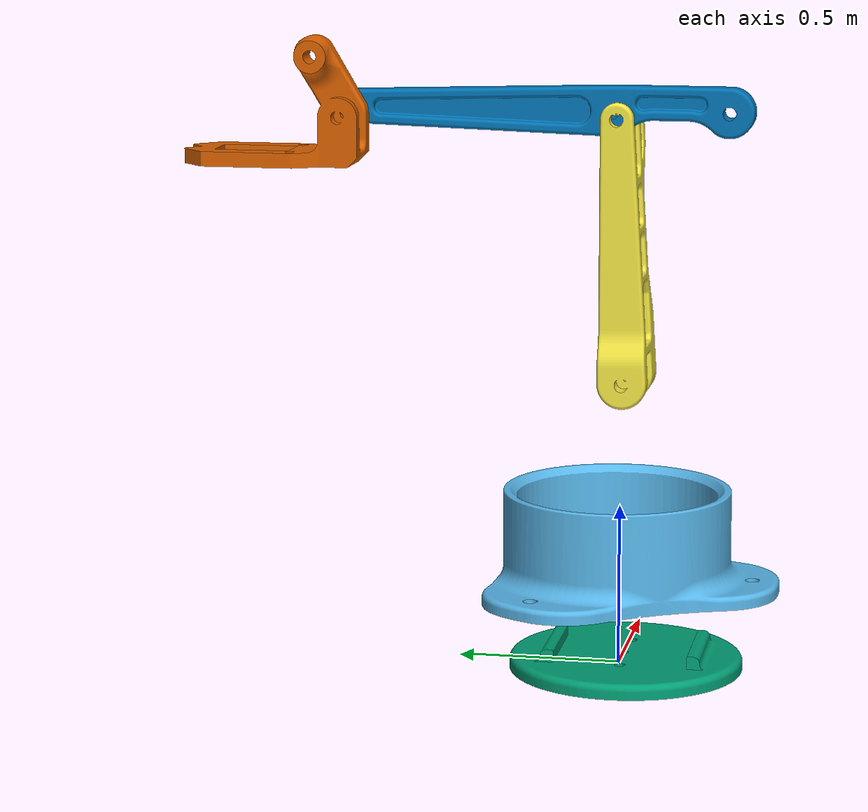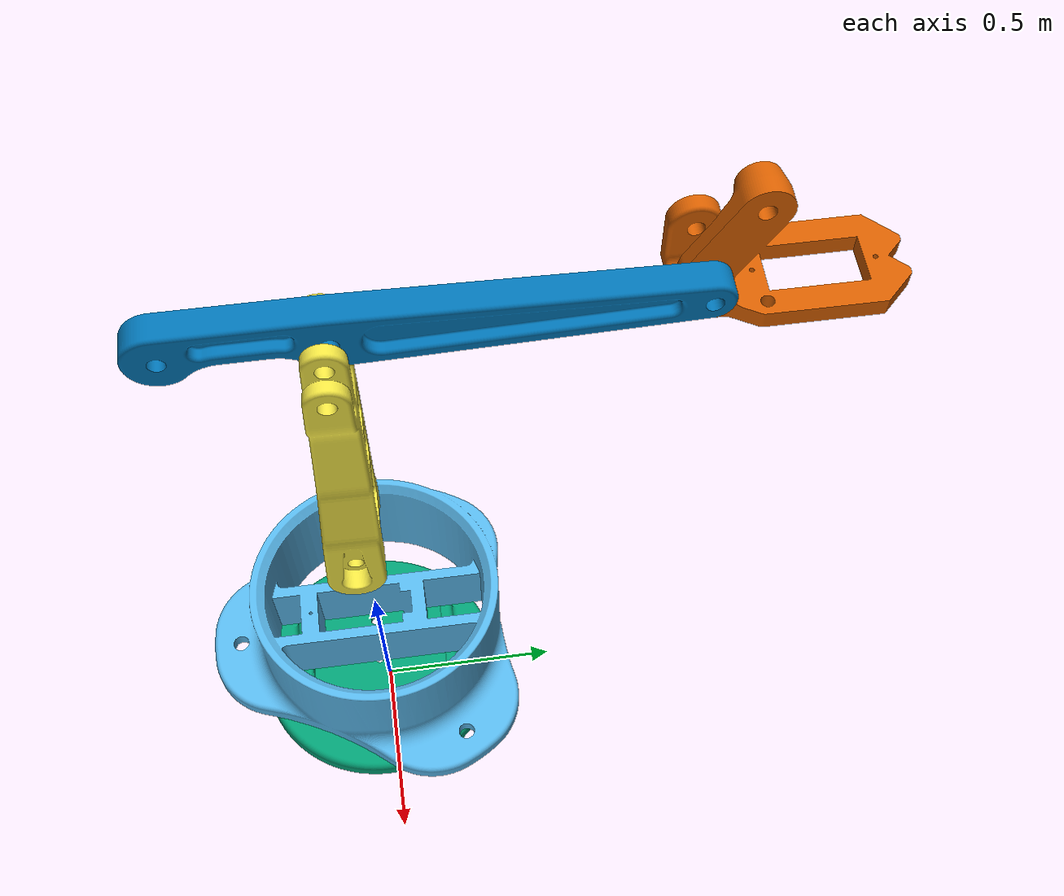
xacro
<?xml version="1.0"?>
<robot xmlns:xacro="http://www.ros.org/wiki/xacro" name="arduinobot">

    <!-- Useful Variables (Properties) -->
    <xacro:property name="PI" value="3.14159265359" />

    <!-- Links -->
    <link name="world"/>

    <joint name="virtual_joint" type="fixed">
        <parent link="world"/>
        <child link="base_link"/>
        <origin xyz="0 0 0.25"/>
    </joint>

    <link name="base_link">
        <inertial>
                <mass value="1" />
                <inertia ixx="1.0" ixy="0.0" ixz="0.0"
                     iyy="1.0" iyz="0.0"
                     izz="1.0" />
        </inertial>
        <visual>
            <origin rpy="0 0 0" xyz="-0.5 -0.5 0"/>
            <geometry>
                <mesh filename="package://arduinobot_description/mesh/basement.STL" scale="0.01 0.01 0.01"/>
            </geometry>
        </visual>
        <collision>
            <origin rpy="0 0 0" xyz="-0.5 -0.5 0"/>
            <geometry>
                <mesh filename="package://arduinobot_description/mesh/basement.STL" scale="0.01 0.01 0.01"/>
            </geometry>
        </collision>
    </link>

    <link name="base_plate">
        <inertial>
                <mass value="0.1" />
                <inertia ixx="1.0" ixy="0.0" ixz="0.0"
                     iyy="1.0" iyz="0.0"
                     izz="1.0" />
        </inertial>
        <visual>
            <origin rpy="0 0 0" xyz="-0.39 -0.39 -0.56"/>
            <geometry>
                <mesh filename="package://arduinobot_description/mesh/base_plate.STL" scale="0.01 0.01 0.01"/>
            </geometry>
        </visual>
        <collision>
            <origin rpy="0 0 0" xyz="-0.39 -0.39 -0.56"/>
            <geometry>
                <mesh filename="package://arduinobot_description/mesh/round_plate.STL" scale="0.01 0.01 0.01"/>
            </geometry>
        </collision>
    </link>

    <link name="forward_drive_arm">
        <inertial>
                <mass value="0.1" />
                <inertia ixx="1.0" ixy="0.0" ixz="0.0"
                     iyy="1.0" iyz="0.0"
                     izz="1.0" />
        </inertial>
        <visual>
            <origin rpy=" 0 -${PI/2} ${PI/2}" xyz="0.19 0.06 -0.08"/>
            <geometry>
                <mesh filename="package://arduinobot_description/mesh/forward_drive_arm.STL" scale="0.01 0.01 0.01"/>
            </geometry>
        </visual>
        <collision>
            <origin rpy=" 0 -${PI/2} ${PI/2}" xyz="0.19 0.06 -0.08"/>
            <geometry>
                <mesh filename="package://arduinobot_description/mesh/forward_drive_arm.STL" scale="0.01 0.01 0.01"/>
            </geometry>
        </collision>
    </link>

    <link name="horizontal_arm">
        <inertial>
                <mass value="0.1" />
                <inertia ixx="1.0" ixy="0.0" ixz="0.0"
                     iyy="1.0" iyz="0.0"
                     izz="1.0" />
        </inertial>
        <visual>
            <origin rpy="${PI/2} 0 ${PI/2}" xyz="-0.03 -0.4 -0.06"/>
            <geometry>
                <mesh filename="package://arduinobot_description/mesh/horizontal_arm.STL" scale="0.01 0.01 0.01"/>
            </geometry>
        </visual>
        <collision>
            <origin rpy="${PI/2} 0 ${PI/2}" xyz="-0.03 -0.4 -0.06"/>
            <geometry>
                <mesh filename="package://arduinobot_description/mesh/horizontal_arm.STL" scale="0.01 0.01 0.01"/>
            </geometry>
        </collision>
    </link>

    <link name="claw_support">
        <inertial>
                <mass value="0.05" />
                <inertia ixx="1.0" ixy="0.0" ixz="0.0"
                     iyy="1.0" iyz="0.0"
                     izz="1.0" />
        </inertial>
        <visual>
            <origin rpy="0 0 ${PI/2}" xyz="0 -0.05 -0.15"/>
            <geometry>
                <mesh filename="package://arduinobot_description/mesh/claw_support.STL" scale="0.01 0.01 0.01"/>
            </geometry>
        </visual>
        <collision>
            <origin rpy="0 0 ${PI/2}" xyz="0 -0.05 -0.15"/>
            <geometry>
                <mesh filename="package://arduinobot_description/mesh/claw_support.STL" scale="0.01 0.01 0.01"/>
            </geometry>
        </collision>
    </link>

    <link name="gripper_right">
        <inertial>
                <mass value="0.01" />
                <inertia ixx="1.0" ixy="0.0" ixz="0.0"
                     iyy="1.0" iyz="0.0"
                     izz="1.0" />
        </inertial>
        <visual>
            <origin rpy="0 0 -${PI/2}" xyz="-0.1 0.50 -0.1"/>
            <geometry>
                <mesh filename="package://arduinobot_description/mesh/right_finger.STL" scale="0.01 0.01 0.01"/>
            </geometry>
        </visual>
        <collision>
            <origin rpy="0 0 -${PI/2}" xyz="-0.1 0.50 -0.1"/>
            <geometry>
                <mesh filename="package://arduinobot_description/mesh/right_finger.STL" scale="0.01 0.01 0.01"/>
            </geometry>
        </collision>
    </link>

    <link name="gripper_left">
        <inertial>
                <mass value="0.01" />
                <inertia ixx="1.0" ixy="0.0" ixz="0.0"
                     iyy="1.0" iyz="0.0"
                     izz="1.0" />
        </inertial>
        <visual>
            <origin rpy="0 0 -${PI/2}" xyz="-0.04 0.50 -0.1"/>
            <geometry>
                <mesh filename="package://arduinobot_description/mesh/left_finger.STL" scale="0.01 0.01 0.01"/>
            </geometry>
        </visual>
        <collision>
            <origin rpy="0 0 -${PI/2}" xyz="-0.04 0.50 -0.1"/>
            <geometry>
                <mesh filename="package://arduinobot_description/mesh/left_finger.STL" scale="0.01 0.01 0.01"/>
            </geometry>
        </collision>
    </link>

    <link name="tool_link"></link>

    <!-- Joints -->
    <joint name ="joint_1" type="revolute">
        <parent link="base_link"/>
        <child link = "base_plate"/>
        <origin xyz="0 0 0.307"/>
        <axis xyz="0 0 1"/>
        <limit lower="-${PI/2}" upper="${PI/2}" effort="30.0" velocity="0.5"/>
    </joint>

    <joint name ="joint_2" type="revolute">
        <parent link="base_plate"/>
        <child link = "forward_drive_arm"/>
        <origin xyz="-0.02 0 0.35"/>
        <axis xyz="1 0 0"/>
        <limit lower="-${PI/2}" upper="${PI/2}" effort="30.0" velocity="0.5"/>
    </joint>

    <joint name ="joint_3" type="revolute">
        <parent link="forward_drive_arm"/>
        <child link = "horizontal_arm"/>
        <origin xyz="0 0 0.8"/>
        <axis xyz="1 0 0"/>
        <limit lower="-${PI/2}" upper="${PI/2}" effort="30.0" velocity="0.5"/>
    </joint>

    <joint name ="horizontal_arm_to_claw_support" type="fixed">
        <parent link="horizontal_arm"/>
        <child link = "claw_support"/>
        <origin xyz="0 0.82 0"/>
    </joint>

    <joint name ="joint_4" type="revolute">
        <parent link="claw_support"/>
        <child link = "gripper_right"/>
        <origin xyz="-0.04 0.13 -0.1"/>
        <axis xyz="0 0 1"/>
        <limit lower="-${PI/2}" upper="0" effort="30.0" velocity="0.5"/>
    </joint>

    <joint name ="joint_5" type="revolute">
        <parent link="claw_support"/>
        <child link = "gripper_left"/>
        <origin xyz="-0.22 0.13 -0.1"/>
        <axis xyz="0 0 1"/>
        <limit lower="0" upper="${PI/2}" effort="30.0" velocity="0.5"/>
        <mimic joint="joint_4" multiplier="-1" offset="0"/>
    </joint>

    <joint name ="gripper_right_to_tool" type="fixed">
        <parent link="gripper_right"/>
        <child link = "tool_link"/>
        <origin xyz="0 0 0"/>
    </joint>

    <!-- Transmissions-->
    <transmission name="transmission_1">
        <type>transmission_interface/SimpleTransmission</type>
        <joint name="joint_1">
            <hardwareInterface>hardware_interface/PositionJointInterface</hardwareInterface>
        </joint>
        <actuator name="motor_1">
            <hardwareInterface>hardware_interface/PositionJointInterface</hardwareInterface>
            <mechanicalReduction>1</mechanicalReduction>
        </actuator>
    </transmission>

    <transmission name="transmission_2">
        <type>transmission_interface/SimpleTransmission</type>
        <joint name="joint_2">
            <hardwareInterface>hardware_interface/PositionJointInterface</hardwareInterface>
        </joint>
        <actuator name="motor_2">
            <hardwareInterface>hardware_interface/PositionJointInterface</hardwareInterface>
            <mechanicalReduction>1</mechanicalReduction>
        </actuator>
    </transmission>

    <transmission name="transmission_3">
        <type>transmission_interface/SimpleTransmission</type>
        <joint name="joint_3">
            <hardwareInterface>hardware_interface/PositionJointInterface</hardwareInterface>
        </joint>
        <actuator name="motor_3">
            <hardwareInterface>hardware_interface/PositionJointInterface</hardwareInterface>
            <mechanicalReduction>1</mechanicalReduction>
        </actuator>
    </transmission>

    <transmission name="transmission_4">
        <type>transmission_interface/SimpleTransmission</type>
        <joint name="joint_4">
            <hardwareInterface>hardware_interface/PositionJointInterface</hardwareInterface>
        </joint>
        <actuator name="motor_4">
            <hardwareInterface>hardware_interface/PositionJointInterface</hardwareInterface>
            <mechanicalReduction>1</mechanicalReduction>
        </actuator>
    </transmission>

    <transmission name="transmission_5">
        <type>transmission_interface/SimpleTransmission</type>
        <joint name="joint_5">
            <hardwareInterface>hardware_interface/PositionJointInterface</hardwareInterface>
        </joint>
        <actuator name="motor_5">
            <hardwareInterface>hardware_interface/PositionJointInterface</hardwareInterface>
            <mechanicalReduction>1</mechanicalReduction>
        </actuator>
    </transmission>

    <!-- ros_control plugin -->
    <gazebo>
        <plugin name="gazebo_ros_control" filename="libgazebo_ros_control.so">
            <robotNamespace>/arduinobot_sim</robotNamespace>
            <robotSimType>gazebo_ros_control/DefaultRobotHWSim</robotSimType>
            <legacyModeNS>true</legacyModeNS>
        </plugin>
    </gazebo>

</robot>
